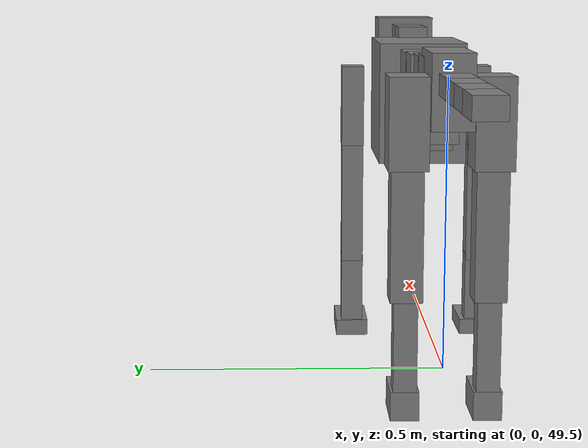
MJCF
<mujoco model="dog">

    <default>
        <joint armature="0.02" stiffness="1" damping="0.2" limited="true"/>
        <geom condim="3" friction="1 0.05 0.05" margin="0.01"/>
        <motor ctrllimited="true" ctrlrange="-1.0 1.0" forcelimited="true" gear="50"/>
    </default>

    <compiler inertiafromgeom="true" angle="radian"/>

    <option timestep="0.016" iterations="50" tolerance="1e-10" solver="Newton" jacobian="dense" cone="pyramidal"/>

    <size nconmax="20000" njmax="60000" nstack="5000000"/>
    <visual>
        <map force="0.1" zfar="30"/>
        <rgba haze="0.15 0.25 0.35 1"/>
        <quality shadowsize="2048"/>
        <global offwidth="800" offheight="800"/>
    </visual>

    <asset>
        <texture type="skybox" builtin="gradient" rgb1="0.3 0.5 0.7" rgb2="0 0 0" width="512" height="512"/>
        <texture name="texplane" type="2d" builtin="checker" rgb1=".2 .3 .4" rgb2=".1 0.15 0.2" width="512" height="512"
                 mark="cross" markrgb=".8 .8 .8"/>
        <texture name="texgeom" type="cube" builtin="flat" mark="cross" width="127" height="1278" rgb1="0.8 0.6 0.4"
                 rgb2="0.8 0.6 0.4" markrgb="1 1 1" random="0.01"/>

        <material name="matplane" reflectance="0.3" texture="texplane" texrepeat="1 1" texuniform="true"/>
        <material name="matgeom" texture="texgeom" texuniform="true" rgba="0.8 0.6 .4 1"/>
    </asset>

    <worldbody>
        <geom name="floor" pos="0 0 0" size="0 0 .25" type="plane" material="matplane" condim="3"/>

        <light directional="false" diffuse=".2 .2 .2" specular="0 0 0" pos="0 0 5" dir="0 0 -1" castshadow="false"/>
        <light mode="targetbodycom" target="torso" directional="false" diffuse=".8 .8 .8" specular="0.3 0.3 0.3"
               pos="0 0 4.0" dir="0 0 -1"/>

        <body name="root" pos="0 0 50">
            <freejoint name="root_1"/>
            <geom type="box" pos="0 0 -0.02" size="0.0774  0.0358  0.063" density="2030"/>

            <body name="spine1" pos="0.054 0 0">
                <joint name="spine1_y" axis="0 1 0" range="0 0.7" limited="true"/>
                <geom type="box" pos="0.02375 0 -0.03" size="0.04375  0.0375  0.05985" density="2030"/>

                <body name="spine2" pos="0.0612 0 0">
                    <joint name="spine2_y" axis="0 1 0" range="-0.15 0.15" limited="true"/>
                    <geom type="box" pos="0.03555  0  -0.04" size="0.04055  0.039  0.06615" density="2030"/>

                    <body name="spine3" pos="0.0730 0 0">
                        <joint name="spine3_y" axis="0 1 0" range="-0.15 0.15" limited="true"/>
                        <geom type="box" pos="0.03555  0  -0.057" size="0.04555  0.0445  0.081" density="2030"/>

                        <body name="spine4" pos="0.0780 0 0">
                            <joint name="spine4_y" axis="0 1 0" range="-0.15 0.15" limited="true"/>
                            <geom type="box" pos="0.05265  0  -0.07" size="0.05265  0.045  0.09135" density="2030"/>

                            <body name="torso" pos="0.1082 0 0">
                                <joint name="torso_y" axis="0 1 0" range="-0.15 0.15" limited="true"/>
                                <geom type="box" pos="0.11925  0  -0.085" size="0.11925  0.085  0.11745"
                                      density="2030"/>

                                <body name="neck1" pos="0.2160  0   0.0180">
                                    <joint name="neck1_y" axis="0 1 0" range="-1.2  -1" limited="true"/>
                                    <geom type="box" pos="0.0423  0  0" size="0.0423  0.03  0.036" density="2325"/>

                                    <body name="neck2" pos="0.0853  0  0">
                                        <joint name="neck2_y" axis="0 1 0" range="0.1  0" limited="true"/>
                                        <geom type="box" pos="0.0423  0  0" size="0.0423  0.03  0.036" density="2325"/>

                                        <body name="head" pos="0.0853  0  0">
                                            <joint name="head_y" axis="0 1 0" range="-0.3  -0.2" limited="true"/>
                                            <geom type="box" pos="0.0531  0  -0.055" size="0.0531  0.06  0.1044"
                                                  density="4030"/>

                                        </body>
                                    </body>
                                </body>

                                <body name="front_shoulder" pos="0.156  0   -0.0480">
                                    <joint name="front_shoulder_y" axis="0 1 0" range="-1 1.5" limited="true"/>
                                    <geom type="box" pos="0 0.13 -0.0546" size="0.0262  0.0224  0.0813" density="1158"/>
                                    <geom type="box" pos="0 -0.13 -0.0546" size="0.0262  0.0224  0.0813"
                                          density="1158"/>

                                    <body name="front_elbow" pos="0  0  -0.1093">
                                        <joint name="front_elbow_y" axis="0 1 0" range="-2 0" limited="true"/>
                                        <geom type="box" pos="0 0.13 -0.1352" size="0.0212  0.0217  0.1352"
                                              density="1081"/>
                                        <geom type="box" pos="0 -0.13 -0.1352" size="0.0212  0.0217  0.1352"
                                              density="1081"/>

                                        <body name="front_wrist" pos="0  0  -0.2705">
                                            <joint name="front_wrist_y" axis="0 1 0" range="-0.2 0" limited="true"/>
                                            <geom type="box" pos="0 0.13 -0.0709" size="0.0198  0.0220  0.0840"
                                                  density="1664"/>
                                            <geom type="box" pos="0 -0.13 -0.0709" size="0.0198  0.0220  0.0840"
                                                  density="1664"/>

                                            <body name="front_finger_end" pos="0  0  -0.1418">
                                                <joint name="front_finger_y" axis="0 1 0" range="-0.4 1"
                                                       limited="true"/>
                                                <geom type="box" pos="0.0325  0.13  -0.0009"
                                                      size="0.0596  0.0325  0.0159" density="1515"/>
                                                <geom type="box" pos="0.0325  -0.13  -0.0009"
                                                      size="0.0596  0.0325  0.0159" density="1515"/>

                                            </body>

                                        </body>
                                    </body>
                                </body>

                            </body>
                        </body>
                    </body>
                </body>
            </body>

            <body name="back_hip" pos="-0.03 0 -0.018">
                <joint name="back_hip_y" axis="0 1 0" range="-1.5 0.3" limited="true"/>
                <geom type="box" pos="0 0.07 -0.0540" size="0.0423  0.0332  0.0768" density="1154"/>
                <geom type="box" pos="0 -0.07 -0.0540" size="0.0423  0.0332  0.0768" density="1154"/>

                <body name="back_knee" pos="0  0  -0.1079">
                    <joint name="back_knee_y" axis="0 1 0" range="0 2.8" limited="true"/>
                    <geom type="box" pos="0 0.07 -0.1146" size="0.0277  0.0273  0.1302" density="1227"/>
                    <geom type="box" pos="0 -0.07 -0.1146" size="0.0277  0.0273  0.1302" density="1227"/>

                    <body name="back_ankle" pos="0  0  -0.2293">
                        <joint name="back_ankle_y" axis="0 1 0" range="-2.2 0" limited="true"/>
                        <geom type="box" pos="0 0.07 -0.0931" size="0.0202  0.0202  0.1044" density="1284"/>
                        <geom type="box" pos="0 -0.07 -0.0931" size="0.0202  0.0202  0.1044" density="1284"/>

                        <body name="back_toe_end" pos="0  0  -0.1862">
                            <joint name="back_toe_y" axis="0 1 0" range="-0.4 1" limited="true"/>
                            <geom type="box" pos="0.0244  0.07  -0.0101" size="0.0447  0.0244  0.0251" density="1515"/>
                            <geom type="box" pos="0.0244  -0.07  -0.0101" size="0.0447  0.0244  0.0251" density="1515"/>

                        </body>
                    </body>
                </body>
            </body>

            <body name="tail1" pos="-0.074 0 -0.006">
                <joint name="tail1_y" axis="0 1 0" range="-0.2 0.2" limited="true"/>
                <geom type="box" pos="-0.0536  0  0" size="0.045  0.025  0.0175" density="1587"/>

                <body name="tail2" pos="-0.09 0 0">
                    <joint name="tail2_y" axis="0 1 0" range="-0.2 0.2" limited="true"/>
                    <geom type="box" pos="-0.0536  0  0" size="0.045  0.025  0.0175" density="1587"/>

                    <body name="tail3" pos="-0.09 0 0">
                        <joint name="tail3_y" axis="0 1 0" range="-0.2 0.2" limited="true"/>
                        <geom type="box" pos="-0.0536  0  0" size="0.045  0.025  0.0175" density="1587"/>

                        <body name="tail4" pos="-0.09 0 0">
                            <joint name="tail4_y" axis="0 1 0" range="-0.2 0.2" limited="true"/>
                            <geom type="box" pos="-0.0536  0  0" size="0.045  0.025  0.0175" density="1587"/>

                        </body>
                    </body>
                </body>
            </body>
        </body>
    </worldbody>

    <actuator>
        <motor joint="spine1_y" forcerange="-150 150     "/>
        <motor joint="spine2_y" forcerange="-150 150     "/>
        <motor joint="spine3_y" forcerange="-150 150     "/>
        <motor joint="spine4_y" forcerange="-150 150     "/>
        <motor joint="torso_y" forcerange="-150 150     "/>
        <motor joint="neck1_y" forcerange="-100 100       "/>
        <motor joint="neck2_y" forcerange="-100 100       "/>
        <motor joint="head_y" forcerange="-150 150       "/>
        <motor joint="front_shoulder_y" forcerange="-104.27 145.11"/>
        <motor joint="front_elbow_y" forcerange="-128.16 129.30"/>
        <motor joint="front_wrist_y" forcerange="-106.80 69.13"/>
        <motor joint="front_finger_y" forcerange="-71.03 62.31"/>
        <motor joint="back_hip_y" forcerange="-300.26 342.25"/>
        <motor joint="back_knee_y" forcerange="-247.53 348.96"/>
        <motor joint="back_angle_y" forcerange="-167.63 55.30"/>
        <motor joint="back_toe_y" forcerange="-54.73 60.28"/>
        <motor joint="tail1_y" forcerange="-50 50     "/>
        <motor joint="tail2_y" forcerange="-50 50     "/>
        <motor joint="tail3_y" forcerange="-50 50     "/>
        <motor joint="tail4_y" forcerange="-50 50     "/>
    </actuator>
</mujoco>
